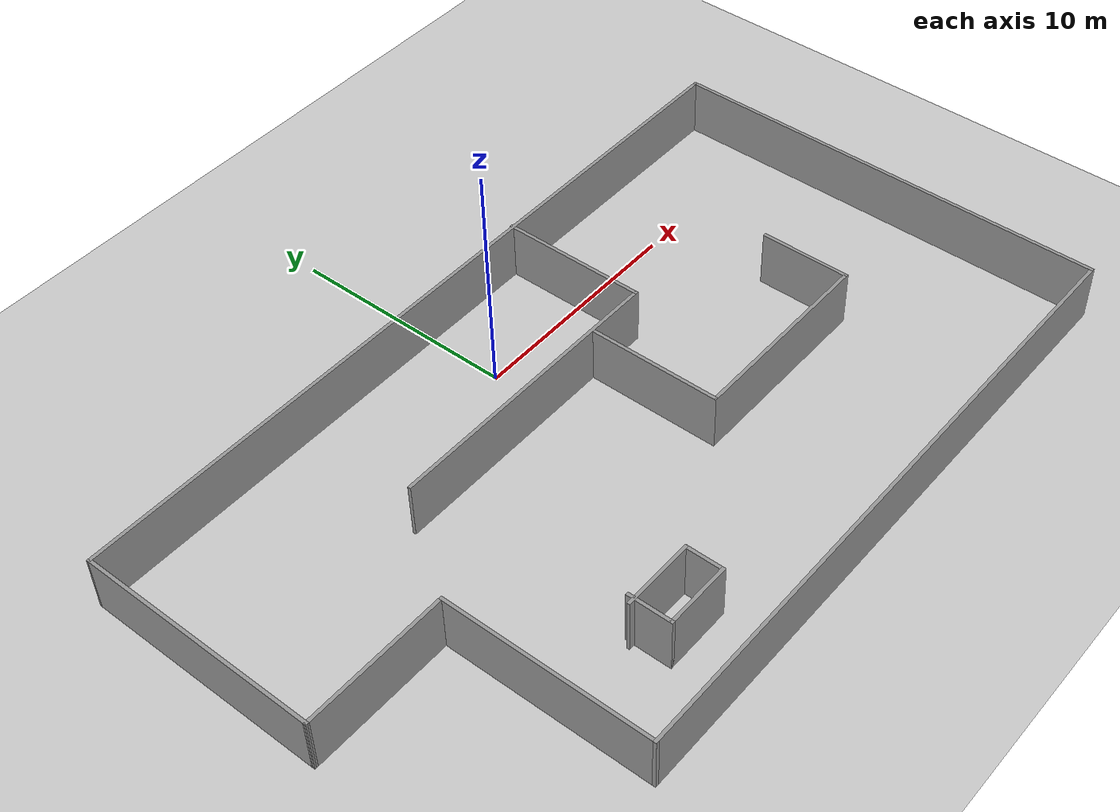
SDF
<sdf version="1.7">
 <world name="default">
  <light name="sun" type="directional">
   <pose>0 0 10 0 -0 0</pose>
   <diffuse>0.8 0.8 0.8 1</diffuse>
   <specular>0.2 0.2 0.2 1</specular>
   <attenuation>
    <range>1000</range>
    <constant>0.9</constant>
    <linear>0.01</linear>
    <quadratic>0.001</quadratic>
   </attenuation>
   <direction>-0.5 0.1 -0.9</direction>
   <spot><inner_angle>0</inner_angle><outer_angle>0</outer_angle><falloff>0</falloff></spot>
  </light>
  <model name="ground_plane">
   <static>1</static>
   <link name="link">
    <collision name="collision">
     <geometry><plane><normal>0 0 1</normal><size>100 100</size></plane></geometry>
     <surface>
      <contact><collide_bitmask>65535</collide_bitmask></contact>
      <friction><ode><mu>100</mu><mu2>50</mu2></ode></friction>
     </surface>
    </collision>
    <visual name="visual">
     <cast_shadows>0</cast_shadows>
     <geometry><plane><normal>0 0 1</normal><size>100 100</size></plane></geometry>
     <material>
      <script><uri>file://media/materials/scripts/gazebo.material</uri><name>Gazebo/Grey</name></script>
     </material>
    </visual>
   </link>
  </model>
  <gravity>0 0 -9.8</gravity>
  <magnetic_field>6e-06 2.3e-05 -4.2e-05</magnetic_field>
  <atmosphere type="adiabatic"/>
  <physics type="ode">
   <max_step_size>0.001</max_step_size>
   <real_time_factor>1</real_time_factor>
   <real_time_update_rate>1000</real_time_update_rate>
  </physics>
  <scene><ambient>0.4 0.4 0.4 1</ambient><background>0.7 0.7 0.7 1</background><shadows>1</shadows></scene>
  <audio><device>default</device></audio>
  <spherical_coordinates>
   <surface_model>EARTH_WGS84</surface_model>
   <latitude_deg>0</latitude_deg>
   <longitude_deg>0</longitude_deg>
   <elevation>0</elevation>
   <heading_deg>0</heading_deg>
  </spherical_coordinates>
  <model name="Untitled">
   <pose>0.190035 -6.37571 0 0 -0 0</pose>
   <link name="Wall_0">
    <collision name="Wall_0_Collision">
     <geometry><box><size>34.5 0.15 2.5</size></box></geometry>
     <pose>0 0 1.25 0 -0 0</pose>
    </collision>
    <visual name="Wall_0_Visual">
     <pose>0 0 1.25 0 -0 0</pose>
     <geometry><box><size>34.5 0.15 2.5</size></box></geometry>
     <material>
      <script><uri>file://media/materials/scripts/gazebo.material</uri><name>Gazebo/Grey</name></script>
      <ambient>1 1 1 1</ambient>
     </material>
     <meta><layer>0</layer></meta>
    </visual>
    <pose>0.050355 9.77325 0 0 -0 0</pose>
   </link>
   <link name="Wall_1">
    <collision name="Wall_1_Collision">
     <geometry><box><size>19.75 0.15 2.5</size></box></geometry>
     <pose>0 0 1.25 0 -0 0</pose>
    </collision>
    <visual name="Wall_1_Visual">
     <pose>0 0 1.25 0 -0 0</pose>
     <geometry><box><size>19.75 0.15 2.5</size></box></geometry>
     <material>
      <script><uri>file://media/materials/scripts/gazebo.material</uri><name>Gazebo/Grey</name></script>
      <ambient>1 1 1 1</ambient>
     </material>
     <meta><layer>0</layer></meta>
    </visual>
    <pose>17.2254 -0.026751 0 0 -0 -1.5708</pose>
   </link>
   <link name="Wall_10">
    <collision name="Wall_10_Collision">
     <geometry><box><size>6 0.15 2.5</size></box></geometry>
     <pose>0 0 1.25 0 -0 0</pose>
    </collision>
    <visual name="Wall_10_Visual">
     <pose>0 0 1.25 0 -0 0</pose>
     <geometry><box><size>6 0.15 2.5</size></box></geometry>
     <material>
      <script><uri>file://media/materials/scripts/gazebo.material</uri><name>Gazebo/Grey</name></script>
      <ambient>1 1 1 1</ambient>
     </material>
     <meta><layer>0</layer></meta>
    </visual>
    <pose>2.29676 0.534954 0 0 -0 -1.5708</pose>
   </link>
   <link name="Wall_11">
    <collision name="Wall_11_Collision">
     <geometry><box><size>8.75 0.15 2.5</size></box></geometry>
     <pose>0 0 1.25 0 -0 0</pose>
    </collision>
    <visual name="Wall_11_Visual">
     <pose>0 0 1.25 0 -0 0</pose>
     <geometry><box><size>8.75 0.15 2.5</size></box></geometry>
     <material>
      <script><uri>file://media/materials/scripts/gazebo.material</uri><name>Gazebo/Grey</name></script>
      <ambient>1 1 1 1</ambient>
     </material>
     <meta><layer>0</layer></meta>
    </visual>
    <pose>6.59676 -2.39005 0 0 -0 0</pose>
   </link>
   <link name="Wall_12">
    <collision name="Wall_12_Collision">
     <geometry><box><size>4 0.15 2.5</size></box></geometry>
     <pose>0 0 1.25 0 -0 0</pose>
    </collision>
    <visual name="Wall_12_Visual">
     <pose>0 0 1.25 0 -0 0</pose>
     <geometry><box><size>4 0.15 2.5</size></box></geometry>
     <material>
      <script><uri>file://media/materials/scripts/gazebo.material</uri><name>Gazebo/Grey</name></script>
      <ambient>1 1 1 1</ambient>
     </material>
     <meta><layer>0</layer></meta>
    </visual>
    <pose>10.8968 -0.465046 0 0 -0 1.5708</pose>
   </link>
   <link name="Wall_14">
    <collision name="Wall_14_Collision">
     <geometry><box><size>2 0.15 2.5</size></box></geometry>
     <pose>0 0 1.25 0 -0 0</pose>
    </collision>
    <visual name="Wall_14_Visual">
     <pose>0 0 1.25 0 -0 0</pose>
     <geometry><box><size>2 0.15 2.5</size></box></geometry>
     <material>
      <script><uri>file://media/materials/scripts/gazebo.material</uri><name>Gazebo/Grey</name></script>
      <ambient>1 1 1 1</ambient>
     </material>
     <meta><layer>0</layer></meta>
    </visual>
    <pose>-6.85216 -6.45347 0 0 -0 -1.5708</pose>
   </link>
   <link name="Wall_15">
    <collision name="Wall_15_Collision">
     <geometry><box><size>3 0.15 2.5</size></box></geometry>
     <pose>0 0 1.25 0 -0 0</pose>
    </collision>
    <visual name="Wall_15_Visual">
     <pose>0 0 1.25 0 -0 0</pose>
     <geometry><box><size>3 0.15 2.5</size></box></geometry>
     <material>
      <script><uri>file://media/materials/scripts/gazebo.material</uri><name>Gazebo/Grey</name></script>
      <ambient>1 1 1 1</ambient>
     </material>
     <meta><layer>0</layer></meta>
    </visual>
    <pose>-5.42716 -7.37847 0 0 -0 0</pose>
   </link>
   <link name="Wall_16">
    <collision name="Wall_16_Collision">
     <geometry><box><size>1.75 0.15 2.5</size></box></geometry>
     <pose>0 0 1.25 0 -0 0</pose>
    </collision>
    <visual name="Wall_16_Visual">
     <pose>0 0 1.25 0 -0 0</pose>
     <geometry><box><size>1.75 0.15 2.5</size></box></geometry>
     <material>
      <script><uri>file://media/materials/scripts/gazebo.material</uri><name>Gazebo/Grey</name></script>
      <ambient>1 1 1 1</ambient>
     </material>
     <meta><layer>0</layer></meta>
    </visual>
    <pose>-4.00216 -6.57847 0 0 -0 1.5708</pose>
   </link>
   <link name="Wall_17">
    <collision name="Wall_17_Collision">
     <geometry><box><size>3.25 0.15 2.5</size></box></geometry>
     <pose>0 0 1.25 0 -0 0</pose>
    </collision>
    <visual name="Wall_17_Visual">
     <pose>0 0 1.25 0 -0 0</pose>
     <geometry><box><size>3.25 0.15 2.5</size></box></geometry>
     <material>
      <script><uri>file://media/materials/scripts/gazebo.material</uri><name>Gazebo/Grey</name></script>
      <ambient>1 1 1 1</ambient>
     </material>
     <meta><layer>0</layer></meta>
    </visual>
    <pose>-5.55216 -5.77847 0 0 -0 3.14159</pose>
   </link>
   <link name="Wall_2">
    <collision name="Wall_2_Collision">
     <geometry><box><size>28.25 0.15 2.5</size></box></geometry>
     <pose>0 0 1.25 0 -0 0</pose>
    </collision>
    <visual name="Wall_2_Visual">
     <pose>0 0 1.25 0 -0 0</pose>
     <geometry><box><size>28.25 0.15 2.5</size></box></geometry>
     <material>
      <script><uri>file://media/materials/scripts/gazebo.material</uri><name>Gazebo/Grey</name></script>
      <ambient>1 1 1 1</ambient>
     </material>
     <meta><layer>0</layer></meta>
    </visual>
    <pose>3.17536 -9.82675 0 0 -0 3.14159</pose>
   </link>
   <link name="Wall_3">
    <collision name="Wall_3_Collision">
     <geometry><box><size>9.25 0.15 2.5</size></box></geometry>
     <pose>0 0 1.25 0 -0 0</pose>
    </collision>
    <visual name="Wall_3_Visual">
     <pose>0 0 1.25 0 -0 0</pose>
     <geometry><box><size>9.25 0.15 2.5</size></box></geometry>
     <material>
      <script><uri>file://media/materials/scripts/gazebo.material</uri><name>Gazebo/Grey</name></script>
      <ambient>1 1 1 1</ambient>
     </material>
     <meta><layer>0</layer></meta>
    </visual>
    <pose>-10.8746 -5.27675 0 0 -0 1.5708</pose>
   </link>
   <link name="Wall_4">
    <collision name="Wall_4_Collision">
     <geometry><box><size>6.5 0.15 2.5</size></box></geometry>
     <pose>0 0 1.25 0 -0 0</pose>
    </collision>
    <visual name="Wall_4_Visual">
     <pose>0 0 1.25 0 -0 0</pose>
     <geometry><box><size>6.5 0.15 2.5</size></box></geometry>
     <material>
      <script><uri>file://media/materials/scripts/gazebo.material</uri><name>Gazebo/Grey</name></script>
      <ambient>1 1 1 1</ambient>
     </material>
     <meta><layer>0</layer></meta>
    </visual>
    <pose>-14.0496 -0.726751 0 0 -0 3.14159</pose>
   </link>
   <link name="Wall_5">
    <collision name="Wall_5_Collision">
     <geometry><box><size>10.6505 0.15 2.5</size></box></geometry>
     <pose>0 0 1.25 0 -0 0</pose>
    </collision>
    <visual name="Wall_5_Visual">
     <pose>0 0 1.25 0 -0 0</pose>
     <geometry><box><size>10.6505 0.15 2.5</size></box></geometry>
     <material>
      <script><uri>file://media/materials/scripts/gazebo.material</uri><name>Gazebo/Grey</name></script>
      <ambient>1 1 1 1</ambient>
     </material>
     <meta><layer>0</layer></meta>
    </visual>
    <pose>-17.1746 4.52325 0 0 -0 1.56127</pose>
   </link>
   <link name="Wall_7">
    <collision name="Wall_7_Collision">
     <geometry><box><size>6.5 0.15 2.5</size></box></geometry>
     <pose>0 0 1.25 0 -0 0</pose>
    </collision>
    <visual name="Wall_7_Visual">
     <pose>0 0 1.25 0 -0 0</pose>
     <geometry><box><size>6.5 0.15 2.5</size></box></geometry>
     <material>
      <script><uri>file://media/materials/scripts/gazebo.material</uri><name>Gazebo/Grey</name></script>
      <ambient>1 1 1 1</ambient>
     </material>
     <meta><layer>0</layer></meta>
    </visual>
    <pose>4.97189 6.65175 0 0 -0 -1.5708</pose>
   </link>
   <link name="Wall_8">
    <collision name="Wall_8_Collision">
     <geometry><box><size>13 0.15 2.5</size></box></geometry>
     <pose>0 0 1.25 0 -0 0</pose>
    </collision>
    <visual name="Wall_8_Visual">
     <pose>0 0 1.25 0 -0 0</pose>
     <geometry><box><size>13 0.15 2.5</size></box></geometry>
     <material>
      <script><uri>file://media/materials/scripts/gazebo.material</uri><name>Gazebo/Grey</name></script>
      <ambient>1 1 1 1</ambient>
     </material>
     <meta><layer>0</layer></meta>
    </visual>
    <pose>-1.45311 3.47675 0 0 -0 3.14159</pose>
   </link>
   <static>1</static>
  </model>
 </world>
</sdf>
